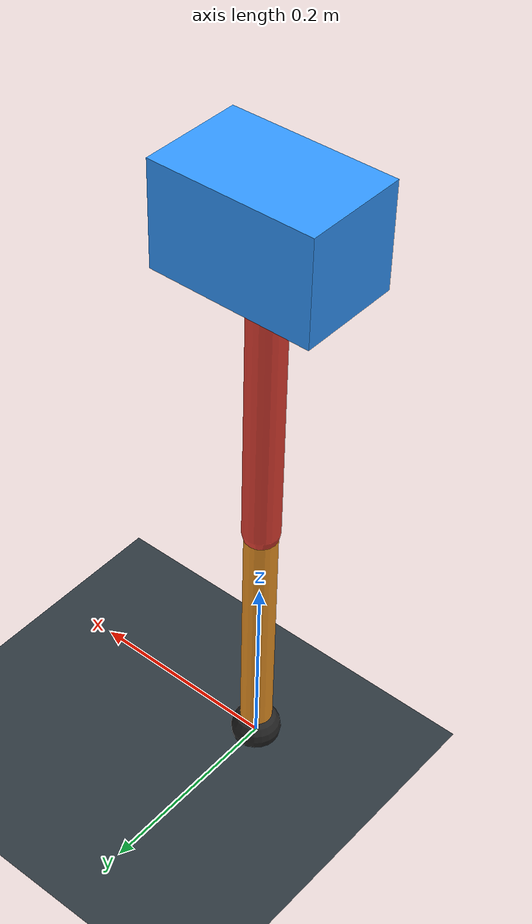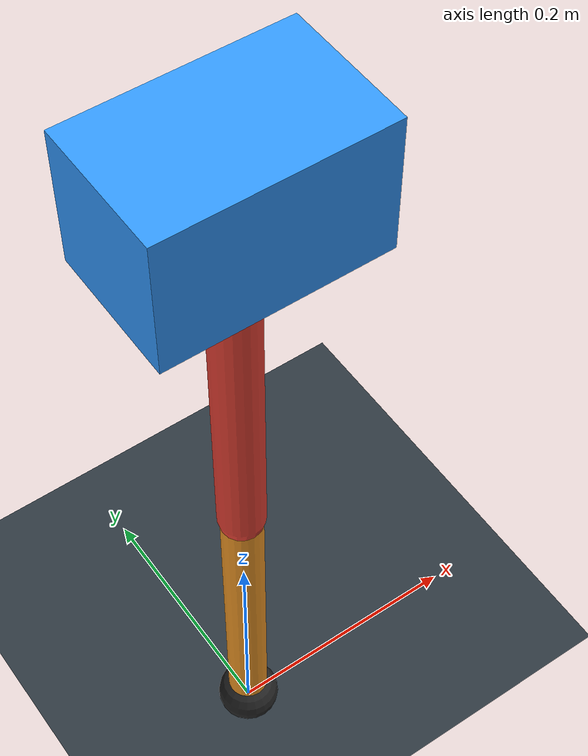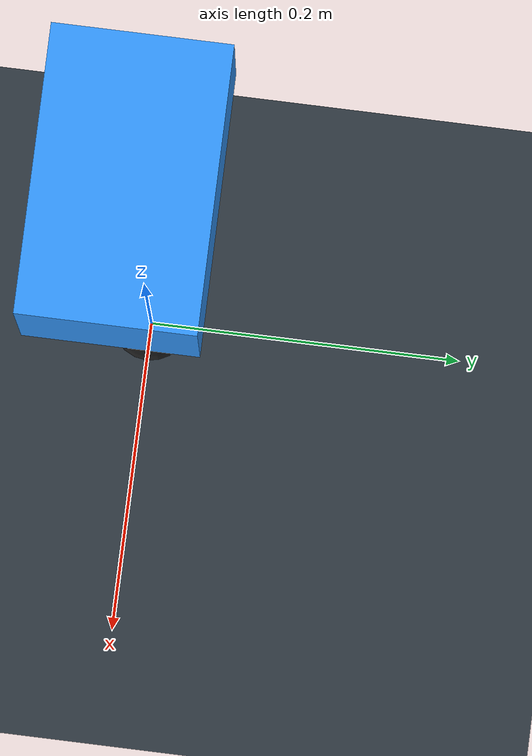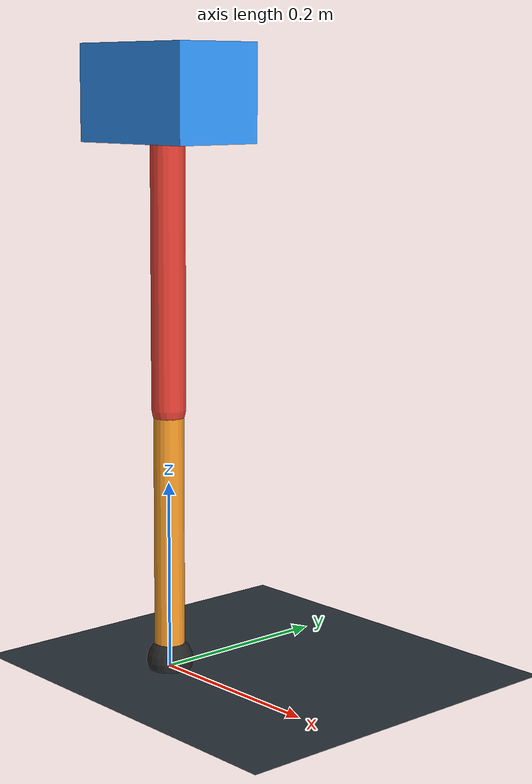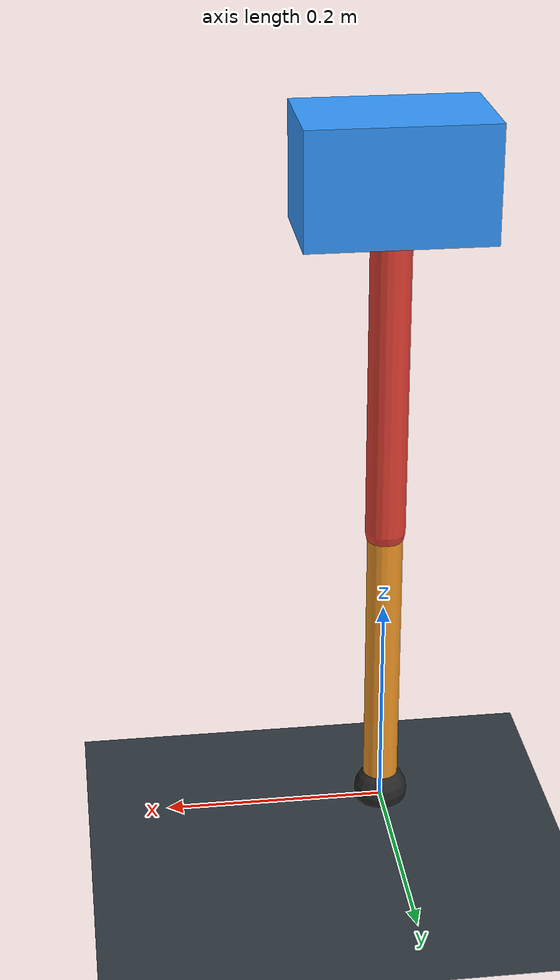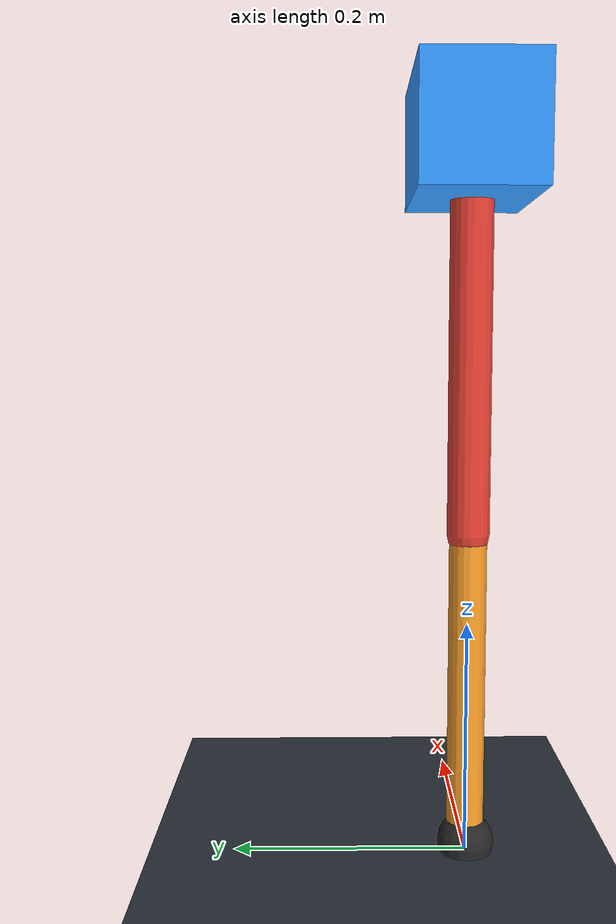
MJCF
<mujoco model="single_axis_two_bar">
  <compiler angle="radian" inertiafromgeom="true"/>
  <option timestep="0.001" integrator="implicitfast" gravity="0 0 -9.81"/>
  <default>
    <joint damping="0.08"/>
    <geom friction="1.2 0.01 0.0001" condim="3"/>
  </default>
  <worldbody>
    <geom name="floor" type="plane" size="5 5 0.1" rgba="0.18 0.22 0.25 1"/>
    <body name="carriage" pos="0 0 0.6034425023996186">
      <joint name="pole_slide" type="slide" axis="0 0 1"/>
      <geom name="payload" type="box" size="0.08 0.05 0.05" mass="2.535728761596201" rgba="0.2 0.6 1 1"/>
      <body name="thigh" pos="0 0 0">
        <joint name="hip" type="hinge" axis="0 1 0"/>
        <geom name="thigh_link" type="capsule" fromto="0 0 0 0 0 -0.32581640608700485" size="0.018" mass="0.23214849462094925" rgba="0.9 0.25 0.2 1"/>
        <body name="shank" pos="0 0 -0.32581640608700485">
          <joint name="knee" type="hinge" axis="0 1 0"/>
          <geom name="shank_link" type="capsule" fromto="0 0 0 0 0 -0.2705160706136329" size="0.016" mass="0.1927462748667095" rgba="0.95 0.6 0.15 1"/>
          <geom name="foot" type="sphere" pos="0 0 -0.2705160706136329" size="0.025" mass="0.03" rgba="0.15 0.15 0.15 1"/>
          <site name="toe" pos="0 0 -0.2705160706136329" size="0.008"/>
        </body>
      </body>
    </body>
  </worldbody>
  <actuator>
    <motor name="hip_motor" joint="hip" ctrlrange="-23.496892931622433 23.496892931622433"/>
    <motor name="knee_motor" joint="knee" ctrlrange="-107.49800605199337 107.49800605199337"/>
  </actuator>
</mujoco>
